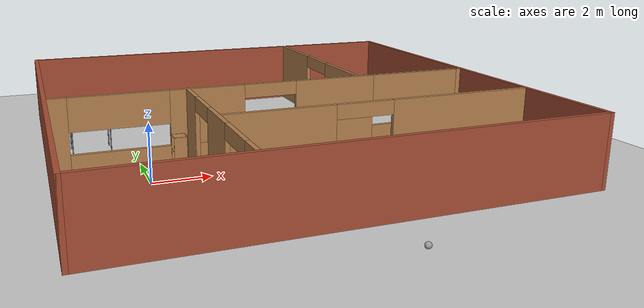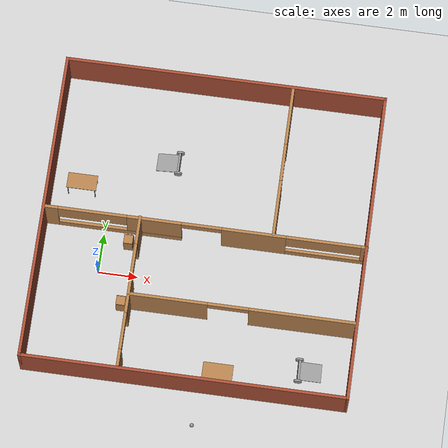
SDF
<sdf version="1.6">
 <world name="default">
  <plugin name="hello" filename="libhello.so"/>
  <light name="sun" type="directional">
   <pose>0 0 10 0 -0 0</pose>
   <diffuse>0.8 0.8 0.8 1</diffuse>
   <specular>0.2 0.2 0.2 1</specular>
   <attenuation>
    <range>1000</range>
    <constant>0.9</constant>
    <linear>0.01</linear>
    <quadratic>0.001</quadratic>
   </attenuation>
   <direction>-0.5 0.1 -0.9</direction>
  </light>
  <model name="ground_plane">
   <static>1</static>
   <link name="link">
    <collision name="collision">
     <geometry><plane><normal>0 0 1</normal><size>100 100</size></plane></geometry>
     <surface>
      <contact><collide_bitmask>65535</collide_bitmask></contact>
      <friction><ode><mu>100</mu><mu2>50</mu2></ode></friction>
     </surface>
    </collision>
    <visual name="visual">
     <cast_shadows>0</cast_shadows>
     <geometry><plane><normal>0 0 1</normal><size>100 100</size></plane></geometry>
     <material>
      <script><uri>file://media/materials/scripts/gazebo.material</uri><name>Gazebo/Grey</name></script>
     </material>
    </visual>
   </link>
  </model>
  <gravity>0 0 -9.8</gravity>
  <magnetic_field>6e-06 2.3e-05 -4.2e-05</magnetic_field>
  <atmosphere type="adiabatic"/>
  <physics name="default_physics" default="0" type="ode">
   <max_step_size>0.001</max_step_size>
   <real_time_factor>1</real_time_factor>
   <real_time_update_rate>1000</real_time_update_rate>
  </physics>
  <scene><ambient>0.4 0.4 0.4 1</ambient><background>0.7 0.7 0.7 1</background><shadows>1</shadows></scene>
  <spherical_coordinates>
   <surface_model>EARTH_WGS84</surface_model>
   <latitude_deg>0</latitude_deg>
   <longitude_deg>0</longitude_deg>
   <elevation>0</elevation>
   <heading_deg>0</heading_deg>
  </spherical_coordinates>
  <model name="new_building">
   <pose>5.0579 2.3979 0 0 -0 0</pose>
   <link name="Wall_10">
    <pose>0.009337 -0.088235 0 0 -0 0</pose>
    <visual name="Wall_10_Visual_0">
     <pose>-7.74118 0 1.25 0 -0 0</pose>
     <geometry><box><size>0.767634 0.15 2.5</size></box></geometry>
     <material>
      <script><uri>file://media/materials/scripts/gazebo.material</uri><name>Gazebo/Wood</name></script>
      <ambient>0.435294 0.796078 0.67451 1</ambient>
     </material>
     <meta><layer>0</layer></meta>
    </visual>
    <collision name="Wall_10_Collision_0">
     <geometry><box><size>0.767634 0.15 2.5</size></box></geometry>
     <pose>-7.74118 0 1.25 0 -0 0</pose>
    </collision>
    <visual name="Wall_10_Visual_1">
     <pose>2.43175 0 1.25 0 -0 0</pose>
     <geometry><box><size>3.21266 0.15 2.5</size></box></geometry>
     <material>
      <script><uri>file://media/materials/scripts/gazebo.material</uri><name>Gazebo/Wood</name></script>
      <ambient>0.435294 0.796078 0.67451 1</ambient>
     </material>
     <meta><layer>0</layer></meta>
    </visual>
    <collision name="Wall_10_Collision_1">
     <geometry><box><size>3.21266 0.15 2.5</size></box></geometry>
     <pose>2.43175 0 1.25 0 -0 0</pose>
    </collision>
    <visual name="Wall_10_Visual_2">
     <pose>-4.26571 0 0.25 0 -0 0</pose>
     <geometry><box><size>6.18331 0.15 0.5</size></box></geometry>
     <material>
      <script><uri>file://media/materials/scripts/gazebo.material</uri><name>Gazebo/Wood</name></script>
      <ambient>0.435294 0.796078 0.67451 1</ambient>
     </material>
     <meta><layer>0</layer></meta>
    </visual>
    <collision name="Wall_10_Collision_2">
     <geometry><box><size>6.18331 0.15 0.5</size></box></geometry>
     <pose>-4.26571 0 0.25 0 -0 0</pose>
    </collision>
    <visual name="Wall_10_Visual_3">
     <pose>6.08154 0 0.25 0 -0 0</pose>
     <geometry><box><size>4.08692 0.15 0.5</size></box></geometry>
     <material>
      <script><uri>file://media/materials/scripts/gazebo.material</uri><name>Gazebo/Wood</name></script>
      <ambient>0.435294 0.796078 0.67451 1</ambient>
     </material>
     <meta><layer>0</layer></meta>
    </visual>
    <collision name="Wall_10_Collision_3">
     <geometry><box><size>4.08692 0.15 0.5</size></box></geometry>
     <pose>6.08154 0 0.25 0 -0 0</pose>
    </collision>
    <visual name="Wall_10_Visual_4">
     <pose>-2.54457 0 1.5 0 -0 0</pose>
     <geometry><box><size>2.74103 0.15 2</size></box></geometry>
     <material>
      <script><uri>file://media/materials/scripts/gazebo.material</uri><name>Gazebo/Wood</name></script>
      <ambient>0.435294 0.796078 0.67451 1</ambient>
     </material>
     <meta><layer>0</layer></meta>
    </visual>
    <collision name="Wall_10_Collision_4">
     <geometry><box><size>2.74103 0.15 2</size></box></geometry>
     <pose>-2.54457 0 1.5 0 -0 0</pose>
    </collision>
    <visual name="Wall_10_Visual_5">
     <pose>-2.54457 0 1.5 0 -0 0</pose>
     <geometry><box><size>2.74103 0.15 2</size></box></geometry>
     <material>
      <script><uri>file://media/materials/scripts/gazebo.material</uri><name>Gazebo/Wood</name></script>
      <ambient>0.435294 0.796078 0.67451 1</ambient>
     </material>
     <meta><layer>0</layer></meta>
    </visual>
    <collision name="Wall_10_Collision_5">
     <geometry><box><size>2.74103 0.15 2</size></box></geometry>
     <pose>-2.54457 0 1.5 0 -0 0</pose>
    </collision>
    <visual name="Wall_10_Visual_6">
     <pose>7.94455 0 1.5 0 -0 0</pose>
     <geometry><box><size>0.360895 0.15 2</size></box></geometry>
     <material>
      <script><uri>file://media/materials/scripts/gazebo.material</uri><name>Gazebo/Wood</name></script>
      <ambient>0.435294 0.796078 0.67451 1</ambient>
     </material>
     <meta><layer>0</layer></meta>
    </visual>
    <collision name="Wall_10_Collision_6">
     <geometry><box><size>0.360895 0.15 2</size></box></geometry>
     <pose>7.94455 0 1.5 0 -0 0</pose>
    </collision>
    <visual name="Wall_10_Visual_7">
     <pose>-5.63622 0 1.9 0 -0 0</pose>
     <geometry><box><size>3.44229 0.15 1.2</size></box></geometry>
     <material>
      <script><uri>file://media/materials/scripts/gazebo.material</uri><name>Gazebo/Wood</name></script>
      <ambient>0.435294 0.796078 0.67451 1</ambient>
     </material>
     <meta><layer>0</layer></meta>
    </visual>
    <collision name="Wall_10_Collision_7">
     <geometry><box><size>3.44229 0.15 1.2</size></box></geometry>
     <pose>-5.63622 0 1.9 0 -0 0</pose>
    </collision>
    <visual name="Wall_10_Visual_8">
     <pose>5.90109 0 1.9 0 -0 0</pose>
     <geometry><box><size>3.72602 0.15 1.2</size></box></geometry>
     <material>
      <script><uri>file://media/materials/scripts/gazebo.material</uri><name>Gazebo/Wood</name></script>
      <ambient>0.435294 0.796078 0.67451 1</ambient>
     </material>
     <meta><layer>0</layer></meta>
    </visual>
    <collision name="Wall_10_Collision_8">
     <geometry><box><size>3.72602 0.15 1.2</size></box></geometry>
     <pose>5.90109 0 1.9 0 -0 0</pose>
    </collision>
    <visual name="Wall_10_Visual_9">
     <pose>-0.174315 0 2.25 0 -0 0</pose>
     <geometry><box><size>1.99947 0.15 0.5</size></box></geometry>
     <material>
      <script><uri>file://media/materials/scripts/gazebo.material</uri><name>Gazebo/Wood</name></script>
      <ambient>0.435294 0.796078 0.67451 1</ambient>
     </material>
     <meta><layer>0</layer></meta>
    </visual>
    <collision name="Wall_10_Collision_9">
     <geometry><box><size>1.99947 0.15 0.5</size></box></geometry>
     <pose>-0.174315 0 2.25 0 -0 0</pose>
    </collision>
    <visual name="Wall_10_Visual_10">
     <pose>-0.174315 0 2.25 0 -0 0</pose>
     <geometry><box><size>1.99947 0.15 0.5</size></box></geometry>
     <material>
      <script><uri>file://media/materials/scripts/gazebo.material</uri><name>Gazebo/Wood</name></script>
      <ambient>0.435294 0.796078 0.67451 1</ambient>
     </material>
     <meta><layer>0</layer></meta>
    </visual>
    <collision name="Wall_10_Collision_10">
     <geometry><box><size>1.99947 0.15 0.5</size></box></geometry>
     <pose>-0.174315 0 2.25 0 -0 0</pose>
    </collision>
   </link>
   <link name="Wall_14">
    <pose>-3.24149 -3.84722 0 0 0 -1.5708</pose>
    <visual name="Wall_14_Visual_0">
     <pose>-3.14694 0 1.25 0 -0 0</pose>
     <geometry><box><size>1.45611 0.15 2.5</size></box></geometry>
     <material>
      <script><uri>file://media/materials/scripts/gazebo.material</uri><name>Gazebo/Wood</name></script>
      <ambient>0.760784 0.662745 0.627451 1</ambient>
     </material>
     <meta><layer>0</layer></meta>
    </visual>
    <collision name="Wall_14_Collision_0">
     <geometry><box><size>1.45611 0.15 2.5</size></box></geometry>
     <pose>-3.14694 0 1.25 0 -0 0</pose>
    </collision>
    <visual name="Wall_14_Visual_1">
     <pose>0.150408 0 1.25 0 -0 0</pose>
     <geometry><box><size>1.95966 0.15 2.5</size></box></geometry>
     <material>
      <script><uri>file://media/materials/scripts/gazebo.material</uri><name>Gazebo/Wood</name></script>
      <ambient>0.760784 0.662745 0.627451 1</ambient>
     </material>
     <meta><layer>0</layer></meta>
    </visual>
    <collision name="Wall_14_Collision_1">
     <geometry><box><size>1.95966 0.15 2.5</size></box></geometry>
     <pose>0.150408 0 1.25 0 -0 0</pose>
    </collision>
    <visual name="Wall_14_Visual_2">
     <pose>3.43493 0 1.25 0 -0 0</pose>
     <geometry><box><size>0.88013 0.15 2.5</size></box></geometry>
     <material>
      <script><uri>file://media/materials/scripts/gazebo.material</uri><name>Gazebo/Wood</name></script>
      <ambient>0.760784 0.662745 0.627451 1</ambient>
     </material>
     <meta><layer>0</layer></meta>
    </visual>
    <collision name="Wall_14_Collision_2">
     <geometry><box><size>0.88013 0.15 2.5</size></box></geometry>
     <pose>3.43493 0 1.25 0 -0 0</pose>
    </collision>
    <visual name="Wall_14_Visual_3">
     <pose>-1.62416 0 2.25 0 -0 0</pose>
     <geometry><box><size>1.58946 0.15 0.5</size></box></geometry>
     <material>
      <script><uri>file://media/materials/scripts/gazebo.material</uri><name>Gazebo/Wood</name></script>
      <ambient>0.760784 0.662745 0.627451 1</ambient>
     </material>
     <meta><layer>0</layer></meta>
    </visual>
    <collision name="Wall_14_Collision_3">
     <geometry><box><size>1.58946 0.15 0.5</size></box></geometry>
     <pose>-1.62416 0 2.25 0 -0 0</pose>
    </collision>
    <visual name="Wall_14_Visual_4">
     <pose>2.06255 0 2.25 0 -0 0</pose>
     <geometry><box><size>1.86463 0.15 0.5</size></box></geometry>
     <material>
      <script><uri>file://media/materials/scripts/gazebo.material</uri><name>Gazebo/Wood</name></script>
      <ambient>0.760784 0.662745 0.627451 1</ambient>
     </material>
     <meta><layer>0</layer></meta>
    </visual>
    <collision name="Wall_14_Collision_4">
     <geometry><box><size>1.86463 0.15 0.5</size></box></geometry>
     <pose>2.06255 0 2.25 0 -0 0</pose>
    </collision>
   </link>
   <link name="Wall_17">
    <pose>2.36618 -4.00829 0 0 -0 0</pose>
    <visual name="Wall_17_Visual_0">
     <pose>-3.66911 0 1.25 0 -0 0</pose>
     <geometry><box><size>3.91178 0.15 2.5</size></box></geometry>
     <material>
      <script><uri>file://media/materials/scripts/gazebo.material</uri><name>Gazebo/Wood</name></script>
      <ambient>1 1 1 1</ambient>
     </material>
     <meta><layer>0</layer></meta>
    </visual>
    <collision name="Wall_17_Collision_0">
     <geometry><box><size>3.91178 0.15 2.5</size></box></geometry>
     <pose>-3.66911 0 1.25 0 -0 0</pose>
    </collision>
    <visual name="Wall_17_Visual_1">
     <pose>2.98223 0 1.25 0 -0 0</pose>
     <geometry><box><size>5.28554 0.15 2.5</size></box></geometry>
     <material>
      <script><uri>file://media/materials/scripts/gazebo.material</uri><name>Gazebo/Wood</name></script>
      <ambient>1 1 1 1</ambient>
     </material>
     <meta><layer>0</layer></meta>
    </visual>
    <collision name="Wall_17_Collision_1">
     <geometry><box><size>5.28554 0.15 2.5</size></box></geometry>
     <pose>2.98223 0 1.25 0 -0 0</pose>
    </collision>
    <visual name="Wall_17_Visual_2">
     <pose>-0.686882 0 2.25 0 -0 0</pose>
     <geometry><box><size>2.05267 0.15 0.5</size></box></geometry>
     <material>
      <script><uri>file://media/materials/scripts/gazebo.material</uri><name>Gazebo/Wood</name></script>
      <ambient>1 1 1 1</ambient>
     </material>
     <meta><layer>0</layer></meta>
    </visual>
    <collision name="Wall_17_Collision_2">
     <geometry><box><size>2.05267 0.15 0.5</size></box></geometry>
     <pose>-0.686882 0 2.25 0 -0 0</pose>
    </collision>
   </link>
   <link name="Wall_20">
    <pose>3.40352 3.9053 0 0 0 -1.5708</pose>
    <visual name="Wall_20_Visual_0">
     <pose>-2.35334 0 1.25 0 -0 0</pose>
     <geometry><box><size>3.04332 0.15 2.5</size></box></geometry>
     <material>
      <script><uri>file://media/materials/scripts/gazebo.material</uri><name>Gazebo/Wood</name></script>
      <ambient>0.760784 0.662745 0.627451 1</ambient>
     </material>
     <meta><layer>0</layer></meta>
    </visual>
    <collision name="Wall_20_Collision_0">
     <geometry><box><size>3.04332 0.15 2.5</size></box></geometry>
     <pose>-2.35334 0 1.25 0 -0 0</pose>
    </collision>
    <visual name="Wall_20_Visual_1">
     <pose>2.48593 0 1.25 0 -0 0</pose>
     <geometry><box><size>2.77813 0.15 2.5</size></box></geometry>
     <material>
      <script><uri>file://media/materials/scripts/gazebo.material</uri><name>Gazebo/Wood</name></script>
      <ambient>0.760784 0.662745 0.627451 1</ambient>
     </material>
     <meta><layer>0</layer></meta>
    </visual>
    <collision name="Wall_20_Collision_1">
     <geometry><box><size>2.77813 0.15 2.5</size></box></geometry>
     <pose>2.48593 0 1.25 0 -0 0</pose>
    </collision>
    <visual name="Wall_20_Visual_2">
     <pose>0.132595 0 2.25 0 -0 0</pose>
     <geometry><box><size>1.92854 0.15 0.5</size></box></geometry>
     <material>
      <script><uri>file://media/materials/scripts/gazebo.material</uri><name>Gazebo/Wood</name></script>
      <ambient>0.760784 0.662745 0.627451 1</ambient>
     </material>
     <meta><layer>0</layer></meta>
    </visual>
    <collision name="Wall_20_Collision_2">
     <geometry><box><size>1.92854 0.15 0.5</size></box></geometry>
     <pose>0.132595 0 2.25 0 -0 0</pose>
    </collision>
   </link>
   <link name="Wall_21">
    <collision name="Wall_21_Collision">
     <geometry><box><size>0.25 0.15 2.5</size></box></geometry>
     <pose>0 0 1.25 0 -0 0</pose>
    </collision>
    <visual name="Wall_21_Visual">
     <pose>0 0 1.25 0 -0 0</pose>
     <geometry><box><size>0.25 0.15 2.5</size></box></geometry>
     <material>
      <script><uri>file://media/materials/scripts/gazebo.material</uri><name>Gazebo/Grey</name></script>
      <ambient>1 1 1 1</ambient>
     </material>
     <meta><layer>0</layer></meta>
    </visual>
    <pose>3.40352 0.055296 0 0 0 -1.5708</pose>
   </link>
   <link name="Wall_3">
    <collision name="Wall_3_Collision">
     <geometry><box><size>16.25 0.15 2.5</size></box></geometry>
     <pose>0 0 1.25 0 -0 0</pose>
    </collision>
    <visual name="Wall_3_Visual">
     <pose>0 0 1.25 0 -0 0</pose>
     <geometry><box><size>16.25 0.15 2.5</size></box></geometry>
     <material>
      <script><uri>file://media/materials/scripts/gazebo.material</uri><name>Gazebo/Bricks</name></script>
      <ambient>1 1 1 1</ambient>
     </material>
     <meta><layer>0</layer></meta>
    </visual>
    <pose>-0.009335 -7.8 0 0 -0 0</pose>
   </link>
   <link name="Wall_4">
    <collision name="Wall_4_Collision">
     <geometry><box><size>15.75 0.15 2.5</size></box></geometry>
     <pose>0 0 1.25 0 -0 0</pose>
    </collision>
    <visual name="Wall_4_Visual">
     <pose>0 0 1.25 0 -0 0</pose>
     <geometry><box><size>15.75 0.15 2.5</size></box></geometry>
     <material>
      <script><uri>file://media/materials/scripts/gazebo.material</uri><name>Gazebo/Bricks</name></script>
      <ambient>1 1 1 1</ambient>
     </material>
     <meta><layer>0</layer></meta>
    </visual>
    <pose>8.04067 0 0 0 -0 1.5708</pose>
   </link>
   <link name="Wall_5">
    <collision name="Wall_5_Collision">
     <geometry><box><size>16.25 0.15 2.5</size></box></geometry>
     <pose>0 0 1.25 0 -0 0</pose>
    </collision>
    <visual name="Wall_5_Visual">
     <pose>0 0 1.25 0 -0 0</pose>
     <geometry><box><size>16.25 0.15 2.5</size></box></geometry>
     <material>
      <script><uri>file://media/materials/scripts/gazebo.material</uri><name>Gazebo/Bricks</name></script>
      <ambient>1 1 1 1</ambient>
     </material>
     <meta><layer>0</layer></meta>
    </visual>
    <pose>-0.009335 7.8 0 0 -0 3.14159</pose>
   </link>
   <link name="Wall_6">
    <collision name="Wall_6_Collision">
     <geometry><box><size>15.75 0.15 2.5</size></box></geometry>
     <pose>0 0 1.25 0 -0 0</pose>
    </collision>
    <visual name="Wall_6_Visual">
     <pose>0 0 1.25 0 -0 0</pose>
     <geometry><box><size>15.75 0.15 2.5</size></box></geometry>
     <material>
      <script><uri>file://media/materials/scripts/gazebo.material</uri><name>Gazebo/Bricks</name></script>
      <ambient>1 1 1 1</ambient>
     </material>
     <meta><layer>0</layer></meta>
    </visual>
    <pose>-8.05934 0 0 0 0 -1.5708</pose>
   </link>
   <static>1</static>
  </model>
  <model name="my_first_robot">
   <link name="link_1">
    <inertial>
     <mass>1</mass>
     <inertia>
      <ixx>0.0841667</ixx>
      <ixy>0</ixy>
      <ixz>0</ixz>
      <iyy>0.00833333</iyy>
      <iyz>0</iyz>
      <izz>0.0908333</izz>
     </inertia>
    </inertial>
    <visual name="visual">
     <geometry><box><size>0.3 1 0.1</size></box></geometry>
     <material>
      <lighting>1</lighting>
      <script><uri>file://media/materials/scripts/gazebo.material</uri><name>Gazebo/Grey</name></script>
      <shader type="pixel"><normal_map>__default__</normal_map></shader>
      <ambient>0.3 0.3 0.3 1</ambient>
      <diffuse>0.7 0.7 0.7 1</diffuse>
      <specular>0.01 0.01 0.01 1</specular>
      <emissive>0 0 0 1</emissive>
     </material>
    </visual>
    <collision name="collision">
     <geometry><box><size>0.3 1 0.1</size></box></geometry>
     <surface>
      <friction>
       <ode><mu>1</mu><mu2>1</mu2><fdir1>0 0 0</fdir1><slip1>0</slip1><slip2>0</slip2></ode>
       <torsional>
        <coefficient>1</coefficient>
        <patch_radius>0</patch_radius>
        <surface_radius>0</surface_radius>
        <use_patch_radius>1</use_patch_radius>
        <ode><slip>0</slip></ode>
       </torsional>
      </friction>
      <bounce><restitution_coefficient>0</restitution_coefficient><threshold>1e+06</threshold></bounce>
      <contact>
       <collide_without_contact>0</collide_without_contact>
       <collide_without_contact_bitmask>1</collide_without_contact_bitmask>
       <collide_bitmask>1</collide_bitmask>
       <ode>
        <soft_cfm>0</soft_cfm>
        <soft_erp>0.2</soft_erp>
        <kp>1e+13</kp>
        <kd>1</kd>
        <max_vel>0.01</max_vel>
        <min_depth>0</min_depth>
       </ode>
       <bullet>
        <split_impulse>1</split_impulse>
        <split_impulse_penetration_threshold>-0.01</split_impulse_penetration_threshold>
        <soft_cfm>0</soft_cfm>
        <soft_erp>0.2</soft_erp>
        <kp>1e+13</kp>
        <kd>1</kd>
       </bullet>
      </contact>
     </surface>
    </collision>
   </link>
   <link name="link_1_0">
    <pose>-0.032445 0 0.590911 0 -0 0</pose>
    <inertial>
     <mass>0.0315759</mass>
     <inertia>
      <ixx>0.00543598</ixx>
      <ixy>0</ixy>
      <ixz>0</ixz>
      <iyy>0.00314574</iyy>
      <iyz>0</iyz>
      <izz>0.00229528</izz>
     </inertia>
    </inertial>
    <visual name="visual">
     <geometry><box><size>0.030945 0.933451 1.09295</size></box></geometry>
     <material>
      <lighting>1</lighting>
      <script><uri>file://media/materials/scripts/gazebo.material</uri><name>Gazebo/Grey</name></script>
      <shader type="pixel"/>
      <ambient>0.3 0.3 0.3 1</ambient>
      <diffuse>0.7 0.7 0.7 1</diffuse>
      <specular>0.01 0.01 0.01 1</specular>
      <emissive>0 0 0 1</emissive>
     </material>
    </visual>
    <collision name="collision">
     <geometry><box><size>0.030945 0.933451 1.09295</size></box></geometry>
     <surface>
      <friction>
       <ode><mu>1</mu><mu2>1</mu2><fdir1>0 0 0</fdir1><slip1>0</slip1><slip2>0</slip2></ode>
       <torsional>
        <coefficient>1</coefficient>
        <patch_radius>0</patch_radius>
        <surface_radius>0</surface_radius>
        <use_patch_radius>1</use_patch_radius>
        <ode><slip>0</slip></ode>
       </torsional>
      </friction>
      <bounce><restitution_coefficient>0</restitution_coefficient><threshold>1e+06</threshold></bounce>
      <contact>
       <collide_without_contact>0</collide_without_contact>
       <collide_without_contact_bitmask>1</collide_without_contact_bitmask>
       <collide_bitmask>1</collide_bitmask>
       <ode>
        <soft_cfm>0</soft_cfm>
        <soft_erp>0.2</soft_erp>
        <kp>1e+13</kp>
        <kd>1</kd>
        <max_vel>0.01</max_vel>
        <min_depth>0</min_depth>
       </ode>
       <bullet>
        <split_impulse>1</split_impulse>
        <split_impulse_penetration_threshold>-0.01</split_impulse_penetration_threshold>
        <soft_cfm>0</soft_cfm>
        <soft_erp>0.2</soft_erp>
        <kp>1e+13</kp>
        <kd>1</kd>
       </bullet>
      </contact>
     </surface>
    </collision>
   </link>
   <link name="link_5_clone">
    <pose>-0 0.550019 -0 1.5707 -0 0</pose>
    <inertial>
     <mass>1</mass>
     <inertia><ixx>0.145833</ixx><ixy>0</ixy><ixz>0</ixz><iyy>0.145833</iyy><iyz>0</iyz><izz>0.125</izz></inertia>
    </inertial>
    <visual name="visual">
     <geometry><cylinder><radius>0.2</radius><length>0.1</length></cylinder></geometry>
     <material>
      <lighting>1</lighting>
      <script><uri>file://media/materials/scripts/gazebo.material</uri><name>Gazebo/Grey</name></script>
      <shader type="pixel"><normal_map>__default__</normal_map></shader>
      <ambient>0.3 0.3 0.3 1</ambient>
      <diffuse>0.7 0.7 0.7 1</diffuse>
      <specular>0.01 0.01 0.01 1</specular>
      <emissive>0 0 0 1</emissive>
     </material>
    </visual>
    <collision name="collision">
     <geometry><cylinder><radius>0.2</radius><length>0.1</length></cylinder></geometry>
     <surface>
      <friction>
       <ode><mu>1</mu><mu2>1</mu2><fdir1>0 0 0</fdir1><slip1>0</slip1><slip2>0</slip2></ode>
       <torsional>
        <coefficient>1</coefficient>
        <patch_radius>0</patch_radius>
        <surface_radius>0</surface_radius>
        <use_patch_radius>1</use_patch_radius>
        <ode><slip>0</slip></ode>
       </torsional>
      </friction>
      <bounce><restitution_coefficient>0</restitution_coefficient><threshold>1e+06</threshold></bounce>
      <contact>
       <collide_without_contact>0</collide_without_contact>
       <collide_without_contact_bitmask>1</collide_without_contact_bitmask>
       <collide_bitmask>1</collide_bitmask>
       <ode>
        <soft_cfm>0</soft_cfm>
        <soft_erp>0.2</soft_erp>
        <kp>1e+13</kp>
        <kd>1</kd>
        <max_vel>0.01</max_vel>
        <min_depth>0</min_depth>
       </ode>
       <bullet>
        <split_impulse>1</split_impulse>
        <split_impulse_penetration_threshold>-0.01</split_impulse_penetration_threshold>
        <soft_cfm>0</soft_cfm>
        <soft_erp>0.2</soft_erp>
        <kp>1e+13</kp>
        <kd>1</kd>
       </bullet>
      </contact>
     </surface>
    </collision>
   </link>
   <link name="link_5_clone_clone">
    <pose>0 -0.55002 0 1.5707 -0 0</pose>
    <inertial>
     <mass>1</mass>
     <inertia><ixx>0.145833</ixx><ixy>0</ixy><ixz>0</ixz><iyy>0.145833</iyy><iyz>0</iyz><izz>0.125</izz></inertia>
    </inertial>
    <visual name="visual">
     <geometry><cylinder><radius>0.2</radius><length>0.1</length></cylinder></geometry>
     <material>
      <lighting>1</lighting>
      <script><uri>file://media/materials/scripts/gazebo.material</uri><name>Gazebo/Grey</name></script>
      <shader type="pixel"><normal_map>__default__</normal_map></shader>
      <ambient>0.3 0.3 0.3 1</ambient>
      <diffuse>0.7 0.7 0.7 1</diffuse>
      <specular>0.01 0.01 0.01 1</specular>
      <emissive>0 0 0 1</emissive>
     </material>
    </visual>
    <collision name="collision">
     <geometry><cylinder><radius>0.2</radius><length>0.1</length></cylinder></geometry>
     <surface>
      <friction>
       <ode><mu>1</mu><mu2>1</mu2><fdir1>0 0 0</fdir1><slip1>0</slip1><slip2>0</slip2></ode>
       <torsional>
        <coefficient>1</coefficient>
        <patch_radius>0</patch_radius>
        <surface_radius>0</surface_radius>
        <use_patch_radius>1</use_patch_radius>
        <ode><slip>0</slip></ode>
       </torsional>
      </friction>
      <bounce><restitution_coefficient>0</restitution_coefficient><threshold>1e+06</threshold></bounce>
      <contact>
       <collide_without_contact>0</collide_without_contact>
       <collide_without_contact_bitmask>1</collide_without_contact_bitmask>
       <collide_bitmask>1</collide_bitmask>
       <ode>
        <soft_cfm>0</soft_cfm>
        <soft_erp>0.2</soft_erp>
        <kp>1e+13</kp>
        <kd>1</kd>
        <max_vel>0.01</max_vel>
        <min_depth>0</min_depth>
       </ode>
       <bullet>
        <split_impulse>1</split_impulse>
        <split_impulse_penetration_threshold>-0.01</split_impulse_penetration_threshold>
        <soft_cfm>0</soft_cfm>
        <soft_erp>0.2</soft_erp>
        <kp>1e+13</kp>
        <kd>1</kd>
       </bullet>
      </contact>
     </surface>
    </collision>
   </link>
   <joint name="link_1_JOINT_1" type="fixed">
    <parent>link_1</parent>
    <child>link_1_0</child>
    <physics>
     <ode><limit><cfm>0</cfm><erp>0.2</erp></limit><suspension><cfm>0</cfm><erp>0.2</erp></suspension></ode>
    </physics>
   </joint>
   <joint name="link_1_JOINT_3" type="revolute">
    <parent>link_1</parent>
    <child>link_5_clone_clone</child>
    <axis>
     <xyz>0 0 1</xyz>
     <use_parent_model_frame>0</use_parent_model_frame>
     <limit>
      <lower>-1.79769e+308</lower>
      <upper>1.79769e+308</upper>
      <effort>-1</effort>
      <velocity>-1</velocity>
     </limit>
     <dynamics>
      <spring_reference>0</spring_reference>
      <spring_stiffness>0</spring_stiffness>
      <damping>0</damping>
      <friction>0</friction>
     </dynamics>
    </axis>
    <physics>
     <ode><limit><cfm>0</cfm><erp>0.2</erp></limit><suspension><cfm>0</cfm><erp>0.2</erp></suspension></ode>
    </physics>
   </joint>
   <joint name="link_1_JOINT_4" type="revolute">
    <parent>link_1</parent>
    <child>link_5_clone</child>
    <axis>
     <xyz>1 0 0</xyz>
     <use_parent_model_frame>0</use_parent_model_frame>
     <limit>
      <lower>-1.79769e+308</lower>
      <upper>1.79769e+308</upper>
      <effort>-1</effort>
      <velocity>-1</velocity>
     </limit>
     <dynamics>
      <spring_reference>0</spring_reference>
      <spring_stiffness>0</spring_stiffness>
      <damping>0</damping>
      <friction>0</friction>
     </dynamics>
    </axis>
    <physics>
     <ode><limit><cfm>0</cfm><erp>0.2</erp></limit><suspension><cfm>0</cfm><erp>0.2</erp></suspension></ode>
    </physics>
   </joint>
   <static>0</static>
   <pose>3.22381 6.20557 0.2 -3.14159 -1.4363 -3.13497</pose>
  </model>
  <model name="my_first_robot_clone">
   <link name="link_1">
    <inertial>
     <mass>1</mass>
     <inertia>
      <ixx>0.0841667</ixx>
      <ixy>0</ixy>
      <ixz>0</ixz>
      <iyy>0.00833333</iyy>
      <iyz>0</iyz>
      <izz>0.0908333</izz>
     </inertia>
    </inertial>
    <visual name="visual">
     <geometry><box><size>0.3 1 0.1</size></box></geometry>
     <material>
      <lighting>1</lighting>
      <script><uri>file://media/materials/scripts/gazebo.material</uri><name>Gazebo/Grey</name></script>
      <shader type="pixel"><normal_map>__default__</normal_map></shader>
      <ambient>0.3 0.3 0.3 1</ambient>
      <diffuse>0.7 0.7 0.7 1</diffuse>
      <specular>0.01 0.01 0.01 1</specular>
      <emissive>0 0 0 1</emissive>
     </material>
    </visual>
    <collision name="collision">
     <geometry><box><size>0.3 1 0.1</size></box></geometry>
     <surface>
      <friction>
       <ode><mu>1</mu><mu2>1</mu2><fdir1>0 0 0</fdir1><slip1>0</slip1><slip2>0</slip2></ode>
       <torsional>
        <coefficient>1</coefficient>
        <patch_radius>0</patch_radius>
        <surface_radius>0</surface_radius>
        <use_patch_radius>1</use_patch_radius>
        <ode><slip>0</slip></ode>
       </torsional>
      </friction>
      <bounce><restitution_coefficient>0</restitution_coefficient><threshold>1e+06</threshold></bounce>
      <contact>
       <collide_without_contact>0</collide_without_contact>
       <collide_without_contact_bitmask>1</collide_without_contact_bitmask>
       <collide_bitmask>1</collide_bitmask>
       <ode>
        <soft_cfm>0</soft_cfm>
        <soft_erp>0.2</soft_erp>
        <kp>1e+13</kp>
        <kd>1</kd>
        <max_vel>0.01</max_vel>
        <min_depth>0</min_depth>
       </ode>
       <bullet>
        <split_impulse>1</split_impulse>
        <split_impulse_penetration_threshold>-0.01</split_impulse_penetration_threshold>
        <soft_cfm>0</soft_cfm>
        <soft_erp>0.2</soft_erp>
        <kp>1e+13</kp>
        <kd>1</kd>
       </bullet>
      </contact>
     </surface>
    </collision>
   </link>
   <link name="link_1_0">
    <pose>-0.032445 0 0.590911 0 -0 0</pose>
    <inertial>
     <mass>0.0315759</mass>
     <inertia>
      <ixx>0.00543598</ixx>
      <ixy>0</ixy>
      <ixz>0</ixz>
      <iyy>0.00314574</iyy>
      <iyz>0</iyz>
      <izz>0.00229528</izz>
     </inertia>
    </inertial>
    <visual name="visual">
     <geometry><box><size>0.030945 0.933451 1.09295</size></box></geometry>
     <material>
      <lighting>1</lighting>
      <script><uri>file://media/materials/scripts/gazebo.material</uri><name>Gazebo/Grey</name></script>
      <shader type="pixel"/>
      <ambient>0.3 0.3 0.3 1</ambient>
      <diffuse>0.7 0.7 0.7 1</diffuse>
      <specular>0.01 0.01 0.01 1</specular>
      <emissive>0 0 0 1</emissive>
     </material>
    </visual>
    <collision name="collision">
     <geometry><box><size>0.030945 0.933451 1.09295</size></box></geometry>
     <surface>
      <friction>
       <ode><mu>1</mu><mu2>1</mu2><fdir1>0 0 0</fdir1><slip1>0</slip1><slip2>0</slip2></ode>
       <torsional>
        <coefficient>1</coefficient>
        <patch_radius>0</patch_radius>
        <surface_radius>0</surface_radius>
        <use_patch_radius>1</use_patch_radius>
        <ode><slip>0</slip></ode>
       </torsional>
      </friction>
      <bounce><restitution_coefficient>0</restitution_coefficient><threshold>1e+06</threshold></bounce>
      <contact>
       <collide_without_contact>0</collide_without_contact>
       <collide_without_contact_bitmask>1</collide_without_contact_bitmask>
       <collide_bitmask>1</collide_bitmask>
       <ode>
        <soft_cfm>0</soft_cfm>
        <soft_erp>0.2</soft_erp>
        <kp>1e+13</kp>
        <kd>1</kd>
        <max_vel>0.01</max_vel>
        <min_depth>0</min_depth>
       </ode>
       <bullet>
        <split_impulse>1</split_impulse>
        <split_impulse_penetration_threshold>-0.01</split_impulse_penetration_threshold>
        <soft_cfm>0</soft_cfm>
        <soft_erp>0.2</soft_erp>
        <kp>1e+13</kp>
        <kd>1</kd>
       </bullet>
      </contact>
     </surface>
    </collision>
   </link>
   <link name="link_5_clone">
    <pose>-0 0.550019 -0 1.5707 -0 0</pose>
    <inertial>
     <mass>1</mass>
     <inertia><ixx>0.145833</ixx><ixy>0</ixy><ixz>0</ixz><iyy>0.145833</iyy><iyz>0</iyz><izz>0.125</izz></inertia>
    </inertial>
    <visual name="visual">
     <geometry><cylinder><radius>0.2</radius><length>0.1</length></cylinder></geometry>
     <material>
      <lighting>1</lighting>
      <script><uri>file://media/materials/scripts/gazebo.material</uri><name>Gazebo/Grey</name></script>
      <shader type="pixel"><normal_map>__default__</normal_map></shader>
      <ambient>0.3 0.3 0.3 1</ambient>
      <diffuse>0.7 0.7 0.7 1</diffuse>
      <specular>0.01 0.01 0.01 1</specular>
      <emissive>0 0 0 1</emissive>
     </material>
    </visual>
    <collision name="collision">
     <geometry><cylinder><radius>0.2</radius><length>0.1</length></cylinder></geometry>
     <surface>
      <friction>
       <ode><mu>1</mu><mu2>1</mu2><fdir1>0 0 0</fdir1><slip1>0</slip1><slip2>0</slip2></ode>
       <torsional>
        <coefficient>1</coefficient>
        <patch_radius>0</patch_radius>
        <surface_radius>0</surface_radius>
        <use_patch_radius>1</use_patch_radius>
        <ode><slip>0</slip></ode>
       </torsional>
      </friction>
      <bounce><restitution_coefficient>0</restitution_coefficient><threshold>1e+06</threshold></bounce>
      <contact>
       <collide_without_contact>0</collide_without_contact>
       <collide_without_contact_bitmask>1</collide_without_contact_bitmask>
       <collide_bitmask>1</collide_bitmask>
       <ode>
        <soft_cfm>0</soft_cfm>
        <soft_erp>0.2</soft_erp>
        <kp>1e+13</kp>
        <kd>1</kd>
        <max_vel>0.01</max_vel>
        <min_depth>0</min_depth>
       </ode>
       <bullet>
        <split_impulse>1</split_impulse>
        <split_impulse_penetration_threshold>-0.01</split_impulse_penetration_threshold>
        <soft_cfm>0</soft_cfm>
        <soft_erp>0.2</soft_erp>
        <kp>1e+13</kp>
        <kd>1</kd>
       </bullet>
      </contact>
     </surface>
    </collision>
   </link>
   <link name="link_5_clone_clone">
    <pose>0 -0.55002 0 1.5707 -0 0</pose>
    <inertial>
     <mass>1</mass>
     <inertia><ixx>0.145833</ixx><ixy>0</ixy><ixz>0</ixz><iyy>0.145833</iyy><iyz>0</iyz><izz>0.125</izz></inertia>
    </inertial>
    <visual name="visual">
     <geometry><cylinder><radius>0.2</radius><length>0.1</length></cylinder></geometry>
     <material>
      <lighting>1</lighting>
      <script><uri>file://media/materials/scripts/gazebo.material</uri><name>Gazebo/Grey</name></script>
      <shader type="pixel"><normal_map>__default__</normal_map></shader>
      <ambient>0.3 0.3 0.3 1</ambient>
      <diffuse>0.7 0.7 0.7 1</diffuse>
      <specular>0.01 0.01 0.01 1</specular>
      <emissive>0 0 0 1</emissive>
     </material>
    </visual>
    <collision name="collision">
     <geometry><cylinder><radius>0.2</radius><length>0.1</length></cylinder></geometry>
     <surface>
      <friction>
       <ode><mu>1</mu><mu2>1</mu2><fdir1>0 0 0</fdir1><slip1>0</slip1><slip2>0</slip2></ode>
       <torsional>
        <coefficient>1</coefficient>
        <patch_radius>0</patch_radius>
        <surface_radius>0</surface_radius>
        <use_patch_radius>1</use_patch_radius>
        <ode><slip>0</slip></ode>
       </torsional>
      </friction>
      <bounce><restitution_coefficient>0</restitution_coefficient><threshold>1e+06</threshold></bounce>
      <contact>
       <collide_without_contact>0</collide_without_contact>
       <collide_without_contact_bitmask>1</collide_without_contact_bitmask>
       <collide_bitmask>1</collide_bitmask>
       <ode>
        <soft_cfm>0</soft_cfm>
        <soft_erp>0.2</soft_erp>
        <kp>1e+13</kp>
        <kd>1</kd>
        <max_vel>0.01</max_vel>
        <min_depth>0</min_depth>
       </ode>
       <bullet>
        <split_impulse>1</split_impulse>
        <split_impulse_penetration_threshold>-0.01</split_impulse_penetration_threshold>
        <soft_cfm>0</soft_cfm>
        <soft_erp>0.2</soft_erp>
        <kp>1e+13</kp>
        <kd>1</kd>
       </bullet>
      </contact>
     </surface>
    </collision>
   </link>
   <joint name="link_1_JOINT_1" type="fixed">
    <parent>link_1</parent>
    <child>link_1_0</child>
    <physics>
     <ode><limit><cfm>0</cfm><erp>0.2</erp></limit><suspension><cfm>0</cfm><erp>0.2</erp></suspension></ode>
    </physics>
   </joint>
   <joint name="link_1_JOINT_3" type="revolute">
    <parent>link_1</parent>
    <child>link_5_clone_clone</child>
    <axis>
     <xyz>0 0 1</xyz>
     <use_parent_model_frame>0</use_parent_model_frame>
     <limit>
      <lower>-1.79769e+308</lower>
      <upper>1.79769e+308</upper>
      <effort>-1</effort>
      <velocity>-1</velocity>
     </limit>
     <dynamics>
      <spring_reference>0</spring_reference>
      <spring_stiffness>0</spring_stiffness>
      <damping>0</damping>
      <friction>0</friction>
     </dynamics>
    </axis>
    <physics>
     <ode><limit><cfm>0</cfm><erp>0.2</erp></limit><suspension><cfm>0</cfm><erp>0.2</erp></suspension></ode>
    </physics>
   </joint>
   <joint name="link_1_JOINT_4" type="revolute">
    <parent>link_1</parent>
    <child>link_5_clone</child>
    <axis>
     <xyz>1 0 0</xyz>
     <use_parent_model_frame>0</use_parent_model_frame>
     <limit>
      <lower>-1.79769e+308</lower>
      <upper>1.79769e+308</upper>
      <effort>-1</effort>
      <velocity>-1</velocity>
     </limit>
     <dynamics>
      <spring_reference>0</spring_reference>
      <spring_stiffness>0</spring_stiffness>
      <damping>0</damping>
      <friction>0</friction>
     </dynamics>
    </axis>
    <physics>
     <ode><limit><cfm>0</cfm><erp>0.2</erp></limit><suspension><cfm>0</cfm><erp>0.2</erp></suspension></ode>
    </physics>
   </joint>
   <static>0</static>
   <pose>10.5716 -3.7306 0.199999 -3.14158 -1.4363 0.034711</pose>
  </model>
  <model name="my_ball">
   <link name="link_3">
    <inertial>
     <mass>1</mass>
     <inertia><ixx>0.1</ixx><ixy>0</ixy><ixz>0</ixz><iyy>0.1</iyy><iyz>0</iyz><izz>0.1</izz></inertia>
    </inertial>
    <visual name="visual">
     <geometry><sphere><radius>0.1</radius></sphere></geometry>
     <material>
      <lighting>1</lighting>
      <script><uri>file://media/materials/scripts/gazebo.material</uri><name>Gazebo/Grey</name></script>
      <shader type="pixel"><normal_map>__default__</normal_map></shader>
      <ambient>1 1 1 1</ambient>
      <diffuse>1 1 1 1</diffuse>
      <specular>1 1 1 1</specular>
      <emissive>1 1 1 1</emissive>
     </material>
    </visual>
    <collision name="collision">
     <geometry><sphere><radius>0.1</radius></sphere></geometry>
     <surface>
      <friction>
       <ode><mu>1</mu><mu2>1</mu2><fdir1>0 0 0</fdir1><slip1>0</slip1><slip2>0</slip2></ode>
       <torsional>
        <coefficient>1</coefficient>
        <patch_radius>0</patch_radius>
        <surface_radius>0</surface_radius>
        <use_patch_radius>1</use_patch_radius>
        <ode><slip>0</slip></ode>
       </torsional>
      </friction>
      <bounce><restitution_coefficient>0</restitution_coefficient><threshold>1e+06</threshold></bounce>
      <contact>
       <collide_without_contact>0</collide_without_contact>
       <collide_without_contact_bitmask>1</collide_without_contact_bitmask>
       <collide_bitmask>1</collide_bitmask>
       <ode>
        <soft_cfm>0</soft_cfm>
        <soft_erp>0.2</soft_erp>
        <kp>1e+13</kp>
        <kd>1</kd>
        <max_vel>0.01</max_vel>
        <min_depth>0</min_depth>
       </ode>
       <bullet>
        <split_impulse>1</split_impulse>
        <split_impulse_penetration_threshold>-0.01</split_impulse_penetration_threshold>
        <soft_cfm>0</soft_cfm>
        <soft_erp>0.2</soft_erp>
        <kp>1e+13</kp>
        <kd>1</kd>
       </bullet>
      </contact>
     </surface>
    </collision>
   </link>
   <static>0</static>
   <pose>5.71377 -7.18227 0.1 0 -0 0</pose>
  </model>
  <model name="cabinet">
   <static>1</static>
   <link name="cabinet_bottom_plate">
    <inertial>
     <pose>0 0 -1 0 -0 0</pose>
     <inertia><ixx>2.05</ixx><ixy>0</ixy><ixz>0</ixz><iyy>2.05</iyy><iyz>0</iyz><izz>2.05</izz></inertia>
     <mass>25</mass>
    </inertial>
    <collision name="cabinet_bottom_plate_geom">
     <pose>0 0 0.01 0 -0 0</pose>
     <geometry><box><size>0.45 0.45 0.02</size></box></geometry>
    </collision>
    <visual name="cabinet_bottom_plate_geom_visual">
     <pose>0 0 0.01 0 -0 0</pose>
     <geometry><box><size>0.45 0.45 0.02</size></box></geometry>
     <material>
      <script><uri>file://media/materials/scripts/gazebo.material</uri><name>Gazebo/Wood</name></script>
     </material>
    </visual>
    <collision name="cabinet_bottom_plate_geom_cabinet_back_plate">
     <pose>0.235 0 0.51 0 -0 0</pose>
     <geometry><box><size>0.02 0.45 1.02</size></box></geometry>
    </collision>
    <visual name="cabinet_bottom_plate_geom_cabinet_back_plate_visual">
     <pose>0.235 0 0.51 0 -0 0</pose>
     <geometry><box><size>0.02 0.45 1.02</size></box></geometry>
     <material>
      <script><uri>file://media/materials/scripts/gazebo.material</uri><name>Gazebo/Wood</name></script>
     </material>
    </visual>
    <collision name="cabinet_bottom_plate_geom_cabinet_left_plate">
     <pose>0 0.235 0.51 0 -0 0</pose>
     <geometry><box><size>0.45 0.02 1.02</size></box></geometry>
    </collision>
    <visual name="cabinet_bottom_plate_geom_cabinet_left_plate_visual">
     <pose>0 0.235 0.51 0 -0 0</pose>
     <geometry><box><size>0.45 0.02 1.02</size></box></geometry>
     <material>
      <script><uri>file://media/materials/scripts/gazebo.material</uri><name>Gazebo/Wood</name></script>
     </material>
    </visual>
    <collision name="cabinet_bottom_plate_geom_cabinet_middle_plate">
     <pose>0 0 0.51 0 -0 0</pose>
     <geometry><box><size>0.45 0.45 0.02</size></box></geometry>
    </collision>
    <visual name="cabinet_bottom_plate_geom_cabinet_middle_plate_visual">
     <pose>0 0 0.51 0 -0 0</pose>
     <geometry><box><size>0.45 0.45 0.02</size></box></geometry>
     <material>
      <script><uri>file://media/materials/scripts/gazebo.material</uri><name>Gazebo/Wood</name></script>
     </material>
    </visual>
    <collision name="cabinet_bottom_plate_geom_cabinet_right_plate">
     <pose>0 -0.235 0.51 0 -0 0</pose>
     <geometry><box><size>0.45 0.02 1.02</size></box></geometry>
    </collision>
    <visual name="cabinet_bottom_plate_geom_cabinet_right_plate_visual">
     <pose>0 -0.235 0.51 0 -0 0</pose>
     <geometry><box><size>0.45 0.02 1.02</size></box></geometry>
     <material>
      <script><uri>file://media/materials/scripts/gazebo.material</uri><name>Gazebo/Wood</name></script>
     </material>
    </visual>
    <collision name="cabinet_bottom_plate_geom_cabinet_top_plate">
     <pose>0 0 1.01 0 -0 0</pose>
     <geometry><box><size>0.45 0.45 0.02</size></box></geometry>
    </collision>
    <visual name="cabinet_bottom_plate_geom_cabinet_top_plate_visual">
     <pose>0 0 1.01 0 -0 0</pose>
     <geometry><box><size>0.45 0.45 0.02</size></box></geometry>
     <material>
      <script><uri>file://media/materials/scripts/gazebo.material</uri><name>Gazebo/Wood</name></script>
     </material>
    </visual>
   </link>
   <pose>1.3896 -1.58633 0 0 -0 0</pose>
  </model>
  <model name="cabinet_0">
   <static>1</static>
   <link name="cabinet_bottom_plate">
    <inertial>
     <pose>0 0 -1 0 -0 0</pose>
     <inertia><ixx>2.05</ixx><ixy>0</ixy><ixz>0</ixz><iyy>2.05</iyy><iyz>0</iyz><izz>2.05</izz></inertia>
     <mass>25</mass>
    </inertial>
    <collision name="cabinet_bottom_plate_geom">
     <pose>0 0 0.01 0 -0 0</pose>
     <geometry><box><size>0.45 0.45 0.02</size></box></geometry>
    </collision>
    <visual name="cabinet_bottom_plate_geom_visual">
     <pose>0 0 0.01 0 -0 0</pose>
     <geometry><box><size>0.45 0.45 0.02</size></box></geometry>
     <material>
      <script><uri>file://media/materials/scripts/gazebo.material</uri><name>Gazebo/Wood</name></script>
     </material>
    </visual>
    <collision name="cabinet_bottom_plate_geom_cabinet_back_plate">
     <pose>0.235 0 0.51 0 -0 0</pose>
     <geometry><box><size>0.02 0.45 1.02</size></box></geometry>
    </collision>
    <visual name="cabinet_bottom_plate_geom_cabinet_back_plate_visual">
     <pose>0.235 0 0.51 0 -0 0</pose>
     <geometry><box><size>0.02 0.45 1.02</size></box></geometry>
     <material>
      <script><uri>file://media/materials/scripts/gazebo.material</uri><name>Gazebo/Wood</name></script>
     </material>
    </visual>
    <collision name="cabinet_bottom_plate_geom_cabinet_left_plate">
     <pose>0 0.235 0.51 0 -0 0</pose>
     <geometry><box><size>0.45 0.02 1.02</size></box></geometry>
    </collision>
    <visual name="cabinet_bottom_plate_geom_cabinet_left_plate_visual">
     <pose>0 0.235 0.51 0 -0 0</pose>
     <geometry><box><size>0.45 0.02 1.02</size></box></geometry>
     <material>
      <script><uri>file://media/materials/scripts/gazebo.material</uri><name>Gazebo/Wood</name></script>
     </material>
    </visual>
    <collision name="cabinet_bottom_plate_geom_cabinet_middle_plate">
     <pose>0 0 0.51 0 -0 0</pose>
     <geometry><box><size>0.45 0.45 0.02</size></box></geometry>
    </collision>
    <visual name="cabinet_bottom_plate_geom_cabinet_middle_plate_visual">
     <pose>0 0 0.51 0 -0 0</pose>
     <geometry><box><size>0.45 0.45 0.02</size></box></geometry>
     <material>
      <script><uri>file://media/materials/scripts/gazebo.material</uri><name>Gazebo/Wood</name></script>
     </material>
    </visual>
    <collision name="cabinet_bottom_plate_geom_cabinet_right_plate">
     <pose>0 -0.235 0.51 0 -0 0</pose>
     <geometry><box><size>0.45 0.02 1.02</size></box></geometry>
    </collision>
    <visual name="cabinet_bottom_plate_geom_cabinet_right_plate_visual">
     <pose>0 -0.235 0.51 0 -0 0</pose>
     <geometry><box><size>0.45 0.02 1.02</size></box></geometry>
     <material>
      <script><uri>file://media/materials/scripts/gazebo.material</uri><name>Gazebo/Wood</name></script>
     </material>
    </visual>
    <collision name="cabinet_bottom_plate_geom_cabinet_top_plate">
     <pose>0 0 1.01 0 -0 0</pose>
     <geometry><box><size>0.45 0.45 0.02</size></box></geometry>
    </collision>
    <visual name="cabinet_bottom_plate_geom_cabinet_top_plate_visual">
     <pose>0 0 1.01 0 -0 0</pose>
     <geometry><box><size>0.45 0.45 0.02</size></box></geometry>
     <material>
      <script><uri>file://media/materials/scripts/gazebo.material</uri><name>Gazebo/Wood</name></script>
     </material>
    </visual>
   </link>
   <pose>1.30286 1.62319 0 0 -0 0</pose>
  </model>
  <model name="table">
   <static>1</static>
   <link name="link">
    <collision name="surface">
     <pose>0 0 1 0 -0 0</pose>
     <geometry><box><size>1.5 0.8 0.03</size></box></geometry>
     <surface><friction><ode><mu>0.6</mu><mu2>0.6</mu2></ode></friction></surface>
    </collision>
    <visual name="visual1">
     <pose>0 0 1 0 -0 0</pose>
     <geometry><box><size>1.5 0.8 0.03</size></box></geometry>
     <material>
      <script><uri>file://media/materials/scripts/gazebo.material</uri><name>Gazebo/Wood</name></script>
     </material>
    </visual>
    <collision name="front_left_leg">
     <pose>0.68 0.38 0.5 0 -0 0</pose>
     <geometry><cylinder><radius>0.02</radius><length>1</length></cylinder></geometry>
    </collision>
    <visual name="front_left_leg">
     <pose>0.68 0.38 0.5 0 -0 0</pose>
     <geometry><cylinder><radius>0.02</radius><length>1</length></cylinder></geometry>
     <material>
      <script><uri>file://media/materials/scripts/gazebo.material</uri><name>Gazebo/Grey</name></script>
     </material>
    </visual>
    <collision name="front_right_leg">
     <pose>0.68 -0.38 0.5 0 -0 0</pose>
     <geometry><cylinder><radius>0.02</radius><length>1</length></cylinder></geometry>
    </collision>
    <visual name="front_right_leg">
     <pose>0.68 -0.38 0.5 0 -0 0</pose>
     <geometry><cylinder><radius>0.02</radius><length>1</length></cylinder></geometry>
     <material>
      <script><uri>file://media/materials/scripts/gazebo.material</uri><name>Gazebo/Grey</name></script>
     </material>
    </visual>
    <collision name="back_right_leg">
     <pose>-0.68 -0.38 0.5 0 -0 0</pose>
     <geometry><cylinder><radius>0.02</radius><length>1</length></cylinder></geometry>
    </collision>
    <visual name="back_right_leg">
     <pose>-0.68 -0.38 0.5 0 -0 0</pose>
     <geometry><cylinder><radius>0.02</radius><length>1</length></cylinder></geometry>
     <material>
      <script><uri>file://media/materials/scripts/gazebo.material</uri><name>Gazebo/Grey</name></script>
     </material>
    </visual>
    <collision name="back_left_leg">
     <pose>-0.68 0.38 0.5 0 -0 0</pose>
     <geometry><cylinder><radius>0.02</radius><length>1</length></cylinder></geometry>
    </collision>
    <visual name="back_left_leg">
     <pose>-0.68 0.38 0.5 0 -0 0</pose>
     <geometry><cylinder><radius>0.02</radius><length>1</length></cylinder></geometry>
     <material>
      <script><uri>file://media/materials/scripts/gazebo.material</uri><name>Gazebo/Grey</name></script>
     </material>
    </visual>
   </link>
   <pose>6.62821 -4.53022 0 0 -0 0</pose>
  </model>
  <model name="table_0">
   <static>1</static>
   <link name="link">
    <collision name="surface">
     <pose>0 0 1 0 -0 0</pose>
     <geometry><box><size>1.5 0.8 0.03</size></box></geometry>
     <surface><friction><ode><mu>0.6</mu><mu2>0.6</mu2></ode></friction></surface>
    </collision>
    <visual name="visual1">
     <pose>0 0 1 0 -0 0</pose>
     <geometry><box><size>1.5 0.8 0.03</size></box></geometry>
     <material>
      <script><uri>file://media/materials/scripts/gazebo.material</uri><name>Gazebo/Wood</name></script>
     </material>
    </visual>
    <collision name="front_left_leg">
     <pose>0.68 0.38 0.5 0 -0 0</pose>
     <geometry><cylinder><radius>0.02</radius><length>1</length></cylinder></geometry>
    </collision>
    <visual name="front_left_leg">
     <pose>0.68 0.38 0.5 0 -0 0</pose>
     <geometry><cylinder><radius>0.02</radius><length>1</length></cylinder></geometry>
     <material>
      <script><uri>file://media/materials/scripts/gazebo.material</uri><name>Gazebo/Grey</name></script>
     </material>
    </visual>
    <collision name="front_right_leg">
     <pose>0.68 -0.38 0.5 0 -0 0</pose>
     <geometry><cylinder><radius>0.02</radius><length>1</length></cylinder></geometry>
    </collision>
    <visual name="front_right_leg">
     <pose>0.68 -0.38 0.5 0 -0 0</pose>
     <geometry><cylinder><radius>0.02</radius><length>1</length></cylinder></geometry>
     <material>
      <script><uri>file://media/materials/scripts/gazebo.material</uri><name>Gazebo/Grey</name></script>
     </material>
    </visual>
    <collision name="back_right_leg">
     <pose>-0.68 -0.38 0.5 0 -0 0</pose>
     <geometry><cylinder><radius>0.02</radius><length>1</length></cylinder></geometry>
    </collision>
    <visual name="back_right_leg">
     <pose>-0.68 -0.38 0.5 0 -0 0</pose>
     <geometry><cylinder><radius>0.02</radius><length>1</length></cylinder></geometry>
     <material>
      <script><uri>file://media/materials/scripts/gazebo.material</uri><name>Gazebo/Grey</name></script>
     </material>
    </visual>
    <collision name="back_left_leg">
     <pose>-0.68 0.38 0.5 0 -0 0</pose>
     <geometry><cylinder><radius>0.02</radius><length>1</length></cylinder></geometry>
    </collision>
    <visual name="back_left_leg">
     <pose>-0.68 0.38 0.5 0 -0 0</pose>
     <geometry><cylinder><radius>0.02</radius><length>1</length></cylinder></geometry>
     <material>
      <script><uri>file://media/materials/scripts/gazebo.material</uri><name>Gazebo/Grey</name></script>
     </material>
    </visual>
   </link>
   <pose>-1.42554 4.31247 0 0 -0 0</pose>
  </model>
 </world>
</sdf>
